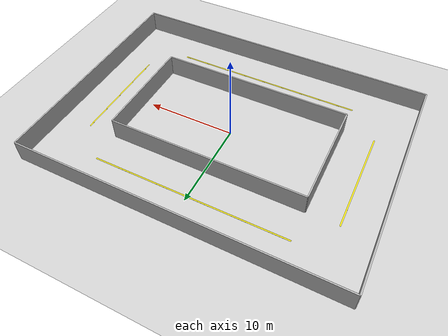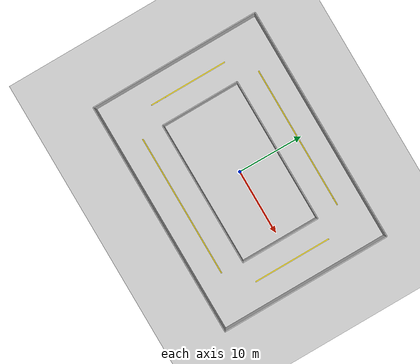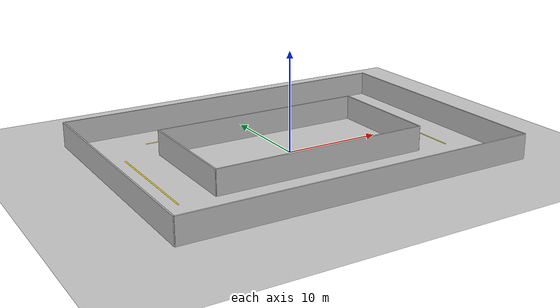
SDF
<?xml version="1.0" ?>
<sdf version="1.7">
  <world name="rect_loop_track">
    <spherical_coordinates>
      <latitude_deg>0</latitude_deg>
      <longitude_deg>0</longitude_deg>
      <elevation>0</elevation>
      <heading_deg>0</heading_deg>
    </spherical_coordinates>

    <include>
      <uri>model://sun</uri>
    </include>
    <include>
      <uri>model://ground_plane</uri>
    </include>

    <model name="rect_loop_walls">
      <static>1</static>

      <!-- Outer perimeter (36m x 26m), centered at origin -->
      <link name="outer_top">
        <pose>0 13 0 0 0 0</pose>
        <collision name="collision">
          <pose>0 0 1.25 0 0 0</pose>
          <geometry><box><size>36 0.15 2.5</size></box></geometry>
        </collision>
        <visual name="visual">
          <pose>0 0 1.25 0 0 0</pose>
          <geometry><box><size>36 0.15 2.5</size></box></geometry>
        </visual>
      </link>
      <link name="outer_bottom">
        <pose>0 -13 0 0 0 0</pose>
        <collision name="collision">
          <pose>0 0 1.25 0 0 0</pose>
          <geometry><box><size>36 0.15 2.5</size></box></geometry>
        </collision>
        <visual name="visual">
          <pose>0 0 1.25 0 0 0</pose>
          <geometry><box><size>36 0.15 2.5</size></box></geometry>
        </visual>
      </link>
      <link name="outer_left">
        <pose>-18 0 0 0 0 1.5708</pose>
        <collision name="collision">
          <pose>0 0 1.25 0 0 0</pose>
          <geometry><box><size>26 0.15 2.5</size></box></geometry>
        </collision>
        <visual name="visual">
          <pose>0 0 1.25 0 0 0</pose>
          <geometry><box><size>26 0.15 2.5</size></box></geometry>
        </visual>
      </link>
      <link name="outer_right">
        <pose>18 0 0 0 0 1.5708</pose>
        <collision name="collision">
          <pose>0 0 1.25 0 0 0</pose>
          <geometry><box><size>26 0.15 2.5</size></box></geometry>
        </collision>
        <visual name="visual">
          <pose>0 0 1.25 0 0 0</pose>
          <geometry><box><size>26 0.15 2.5</size></box></geometry>
        </visual>
      </link>

      <!-- Inner island (22m x 12m), centered at origin - corridor is the
           7m gap between this and the outer perimeter above -->
      <link name="inner_top">
        <pose>0 6 0 0 0 0</pose>
        <collision name="collision">
          <pose>0 0 1.25 0 0 0</pose>
          <geometry><box><size>22 0.15 2.5</size></box></geometry>
        </collision>
        <visual name="visual">
          <pose>0 0 1.25 0 0 0</pose>
          <geometry><box><size>22 0.15 2.5</size></box></geometry>
        </visual>
      </link>
      <link name="inner_bottom">
        <pose>0 -6 0 0 0 0</pose>
        <collision name="collision">
          <pose>0 0 1.25 0 0 0</pose>
          <geometry><box><size>22 0.15 2.5</size></box></geometry>
        </collision>
        <visual name="visual">
          <pose>0 0 1.25 0 0 0</pose>
          <geometry><box><size>22 0.15 2.5</size></box></geometry>
        </visual>
      </link>
      <link name="inner_left">
        <pose>-11 0 0 0 0 1.5708</pose>
        <collision name="collision">
          <pose>0 0 1.25 0 0 0</pose>
          <geometry><box><size>12 0.15 2.5</size></box></geometry>
        </collision>
        <visual name="visual">
          <pose>0 0 1.25 0 0 0</pose>
          <geometry><box><size>12 0.15 2.5</size></box></geometry>
        </visual>
      </link>
      <link name="inner_right">
        <pose>11 0 0 0 0 1.5708</pose>
        <collision name="collision">
          <pose>0 0 1.25 0 0 0</pose>
          <geometry><box><size>12 0.15 2.5</size></box></geometry>
        </collision>
        <visual name="visual">
          <pose>0 0 1.25 0 0 0</pose>
          <geometry><box><size>12 0.15 2.5</size></box></geometry>
        </visual>
      </link>
    </model>

    <model name="centerline_markings">
      <static>1</static>
      <link name="stripe_south">
        <pose>0 -9.5 0.01 0 0 0</pose>
        <visual name="visual">
          <geometry><box><size>22 0.15 0.005</size></box></geometry>
          <material><ambient>1 0.9 0.1 1</ambient><diffuse>1 0.9 0.1 1</diffuse></material>
        </visual>
      </link>
      <link name="stripe_north">
        <pose>0 9.5 0.01 0 0 0</pose>
        <visual name="visual">
          <geometry><box><size>22 0.15 0.005</size></box></geometry>
          <material><ambient>1 0.9 0.1 1</ambient><diffuse>1 0.9 0.1 1</diffuse></material>
        </visual>
      </link>
      <link name="stripe_west">
        <pose>-14.5 0 0.01 0 0 1.5708</pose>
        <visual name="visual">
          <geometry><box><size>12 0.15 0.005</size></box></geometry>
          <material><ambient>1 0.9 0.1 1</ambient><diffuse>1 0.9 0.1 1</diffuse></material>
        </visual>
      </link>
      <link name="stripe_east">
        <pose>14.5 0 0.01 0 0 1.5708</pose>
        <visual name="visual">
          <geometry><box><size>12 0.15 0.005</size></box></geometry>
          <material><ambient>1 0.9 0.1 1</ambient><diffuse>1 0.9 0.1 1</diffuse></material>
        </visual>
      </link>
    </model>

    <physics type="ode">
      <real_time_update_rate>1000.0</real_time_update_rate>
      <max_step_size>0.001</max_step_size>
    </physics>
  </world>
</sdf>
